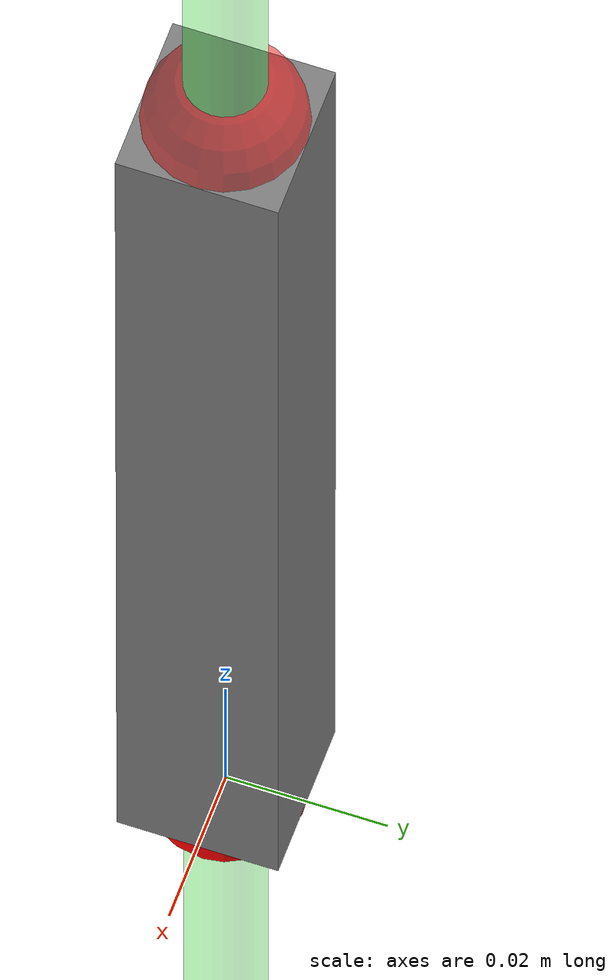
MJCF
<mujoco model="sand_shaping_gripper">
  <worldbody>
      <body name="gripper_base" pos="0 0 0" quat="1 0 0 0">
        <site name="ft_frame" pos="0 0 0"  size="0.01 0.01 0.01" rgba="1 0 0 1" type="sphere" group="1"/>
        <!-- PLA rho=1210–1430kg/m3, ABS rho=1030-1070kg/m3 -->
        <!-- V=0.000045m³, m = Vxrho = 0.000045m³x1300kg/m3 = 0.0585kg -->
        <inertial pos="0 0 0.075" mass="0.0585" diaginertia="0.0001116375 0.0001116375 0.0000039" />
        <geom name="gripper_col" type="box" pos="0 0 0.075" size="0.01 0.01 0.075" group="0"/>
        <geom name="gripper_vis" type="box" pos="0 0 0.075" size="0.01 0.01 0.075" group="1" contype="0" conaffinity="0"/>
        <geom name="gripper_interaction" type="box" pos="0 0 0.075" size="0.01 0.01 0.075" group="2"/>
        <body name="eef" pos="0 0 0.15">
            <site name="grip_site" pos="0 0 0" size="0.01 0.01 0.01" rgba="1 0 0 0.5" type="sphere" group="1"/>
            <site name="ee_x" pos="0.1 0 0" size="0.005 .1"  quat="0.707105  0 0.707108 0 " rgba="1 0 0 0" type="cylinder" group="1"/>
            <site name="ee_y" pos="0 0.1 0" size="0.005 .1" quat="0.707105 0.707108 0 0" rgba="0 1 0 0" type="cylinder" group="1"/>
            <site name="ee_z" pos="0 0 0.1" size="0.005 .1" quat="1 0 0 0" rgba="0 0 1 0" type="cylinder" group="1"/>
            <!-- This site was added for visualization. -->
            <site name="grip_site_cylinder" pos="0 0 0" size="0.005 10" rgba="0 1 0 0.3" type="cylinder" group="1"/>
          </body>
    </body>
  </worldbody>
  <sensor>
        <force name="force_ee" site="ft_frame"/>
        <torque name="torque_ee" site="ft_frame"/>
    </sensor>
</mujoco>
